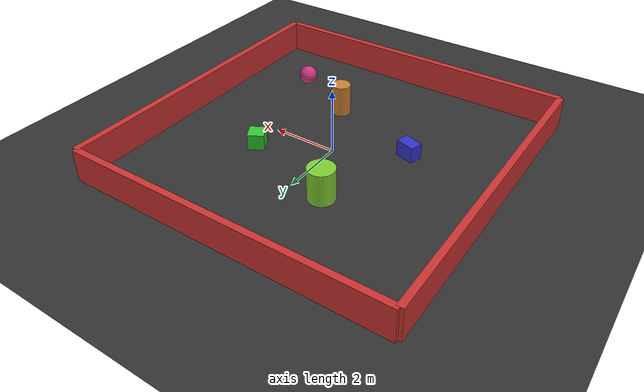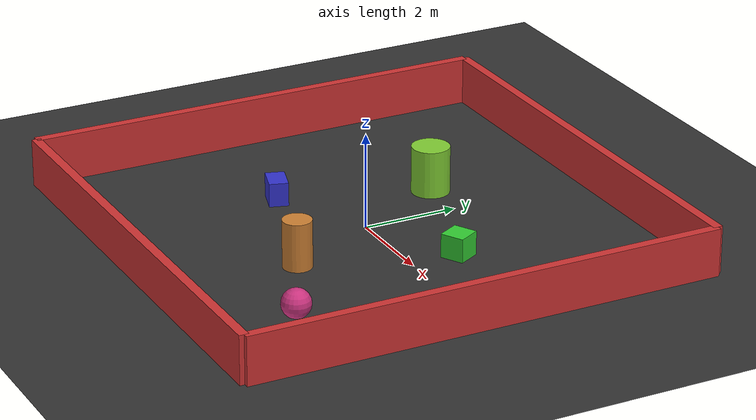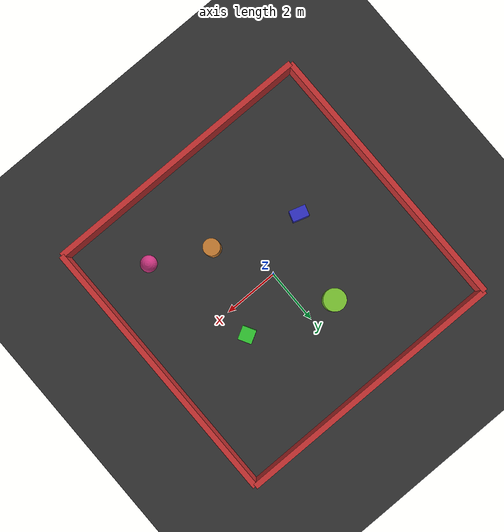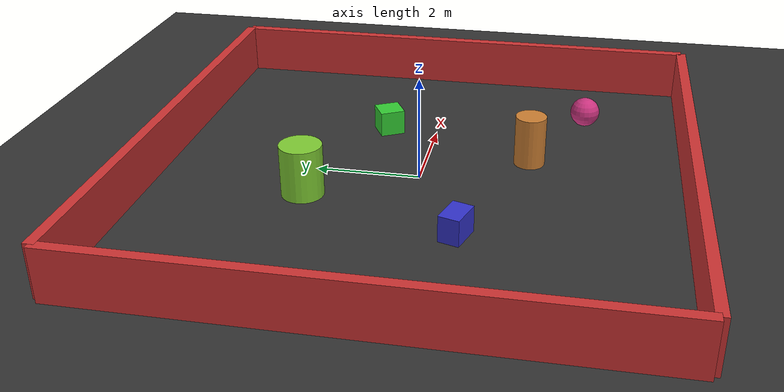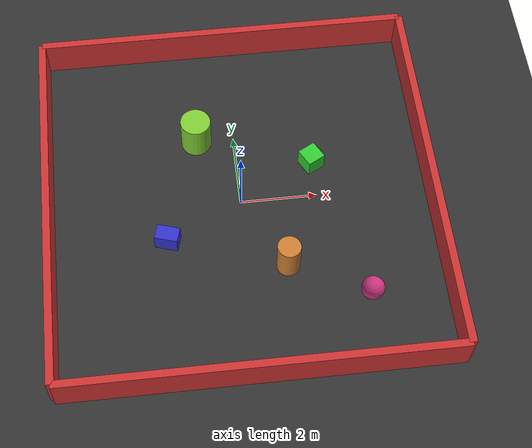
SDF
<?xml version="1.0" ?>
<sdf version="1.8">
  <world name="livox_world">
    <physics name="physics" type="ode">
      <max_step_size>0.001</max_step_size>
      <real_time_factor>1.0</real_time_factor>
      <real_time_update_rate>1000</real_time_update_rate>
      <ode>
        <solver>
          <type>quick</type>
          <iters>50</iters>
          <sor>1.0</sor>
        </solver>
        <constraints>
          <cfm>0.0</cfm>
          <erp>0.2</erp>
          <contact_max_correcting_vel>100.0</contact_max_correcting_vel>
          <contact_surface_layer>0.001</contact_surface_layer>
        </constraints>
      </ode>
    </physics>

    <scene>
      <ambient>0.5 0.5 0.5 1</ambient>
      <background>0.8 0.8 0.8 1</background>
      <shadows>true</shadows>
      <grid>true</grid>
    </scene>

    <light type="directional" name="sun">
      <cast_shadows>true</cast_shadows>
      <pose>0 0 10 0 0 0</pose>
      <diffuse>0.8 0.8 0.8 1</diffuse>
      <specular>0.2 0.2 0.2 1</specular>
      <attenuation>
        <range>1000</range>
        <constant>0.9</constant>
        <linear>0.01</linear>
        <quadratic>0.001</quadratic>
      </attenuation>
      <direction>-0.5 0.1 -0.9</direction>
    </light>

    <model name="ground_plane">
      <static>true</static>
      <link name="link">
        <collision name="collision">
          <geometry>
            <plane>
              <normal>0 0 1</normal>
              <size>100 100</size>
            </plane>
          </geometry>
          <surface>
            <friction>
              <ode>
                <mu>1.0</mu>
                <mu2>1.0</mu2>
              </ode>
            </friction>
            <contact>
              <ode>
                <kp>1e7</kp>
                <kd>1</kd>
              </ode>
            </contact>
          </surface>
        </collision>
        <visual name="visual">
          <geometry>
            <plane>
              <normal>0 0 1</normal>
              <size>100 100</size>
            </plane>
          </geometry>
          <material>
            <ambient>0.2 0.2 0.2 1</ambient>
            <diffuse>0.2 0.2 0.2 1</diffuse>
            <specular>0 0 0 1</specular>
          </material>
        </visual>
      </link>
    </model>

    <model name="wall_1">
      <static>true</static>
      <pose>5 0 0.5 0 0 0</pose>
      <link name="link">
        <collision name="collision">
          <geometry>
            <box>
              <size>0.2 10 1</size>
            </box>
          </geometry>
        </collision>
        <visual name="visual">
          <geometry>
            <box>
              <size>0.2 10 1</size>
            </box>
          </geometry>
          <material>
            <ambient>0.8 0.2 0.2 1</ambient>
            <diffuse>0.8 0.2 0.2 1</diffuse>
          </material>
        </visual>
      </link>
    </model>

    <model name="wall_2">
      <static>true</static>
      <pose>-5 0 0.5 0 0 0</pose>
      <link name="link">
        <collision name="collision">
          <geometry>
            <box>
              <size>0.2 10 1</size>
            </box>
          </geometry>
        </collision>
        <visual name="visual">
          <geometry>
            <box>
              <size>0.2 10 1</size>
            </box>
          </geometry>
          <material>
            <ambient>0.8 0.2 0.2 1</ambient>
            <diffuse>0.8 0.2 0.2 1</diffuse>
          </material>
        </visual>
      </link>
    </model>

    <model name="wall_3">
      <static>true</static>
      <pose>0 5 0.5 0 0 0</pose>
      <link name="link">
        <collision name="collision">
          <geometry>
            <box>
              <size>10 0.2 1</size>
            </box>
          </geometry>
        </collision>
        <visual name="visual">
          <geometry>
            <box>
              <size>10 0.2 1</size>
            </box>
          </geometry>
          <material>
            <ambient>0.8 0.2 0.2 1</ambient>
            <diffuse>0.8 0.2 0.2 1</diffuse>
          </material>
        </visual>
      </link>
    </model>

    <model name="wall_4">
      <static>true</static>
      <pose>0 -5 0.5 0 0 0</pose>
      <link name="link">
        <collision name="collision">
          <geometry>
            <box>
              <size>10 0.2 1</size>
            </box>
          </geometry>
        </collision>
        <visual name="visual">
          <geometry>
            <box>
              <size>10 0.2 1</size>
            </box>
          </geometry>
          <material>
            <ambient>0.8 0.2 0.2 1</ambient>
            <diffuse>0.8 0.2 0.2 1</diffuse>
          </material>
        </visual>
      </link>
    </model>

    <model name="obstacle_box_1">
      <static>true</static>
      <pose>2 1 0.25 0 0 0.5</pose>
      <link name="link">
        <collision name="collision">
          <geometry>
            <box>
              <size>0.5 0.5 0.5</size>
            </box>
          </geometry>
        </collision>
        <visual name="visual">
          <geometry>
            <box>
              <size>0.5 0.5 0.5</size>
            </box>
          </geometry>
          <material>
            <ambient>0.2 0.8 0.2 1</ambient>
            <diffuse>0.2 0.8 0.2 1</diffuse>
          </material>
        </visual>
      </link>
    </model>

    <model name="obstacle_box_2">
      <static>true</static>
      <pose>-2 -1 0.25 0 0 -0.3</pose>
      <link name="link">
        <collision name="collision">
          <geometry>
            <box>
              <size>0.6 0.4 0.5</size>
            </box>
          </geometry>
        </collision>
        <visual name="visual">
          <geometry>
            <box>
              <size>0.6 0.4 0.5</size>
            </box>
          </geometry>
          <material>
            <ambient>0.2 0.2 0.8 1</ambient>
            <diffuse>0.2 0.2 0.8 1</diffuse>
          </material>
        </visual>
      </link>
    </model>

    <model name="obstacle_cylinder_1">
      <static>true</static>
      <pose>1 -2 0.5 0 0 0</pose>
      <link name="link">
        <collision name="collision">
          <geometry>
            <cylinder>
              <radius>0.3</radius>
              <length>1</length>
            </cylinder>
          </geometry>
        </collision>
        <visual name="visual">
          <geometry>
            <cylinder>
              <radius>0.3</radius>
              <length>1</length>
            </cylinder>
          </geometry>
          <material>
            <ambient>0.8 0.5 0.2 1</ambient>
            <diffuse>0.8 0.5 0.2 1</diffuse>
          </material>
        </visual>
      </link>
    </model>

    <model name="obstacle_cylinder_2">
      <static>true</static>
      <pose>-1 2 0.5 0 0 0</pose>
      <link name="link">
        <collision name="collision">
          <geometry>
            <cylinder>
              <radius>0.4</radius>
              <length>1</length>
            </cylinder>
          </geometry>
        </collision>
        <visual name="visual">
          <geometry>
            <cylinder>
              <radius>0.4</radius>
              <length>1</length>
            </cylinder>
          </geometry>
          <material>
            <ambient>0.5 0.8 0.2 1</ambient>
            <diffuse>0.5 0.8 0.2 1</diffuse>
          </material>
        </visual>
      </link>
    </model>

    <model name="obstacle_sphere">
      <static>true</static>
      <pose>3 -3 0.3 0 0 0</pose>
      <link name="link">
        <collision name="collision">
          <geometry>
            <sphere>
              <radius>0.3</radius>
            </sphere>
          </geometry>
        </collision>
        <visual name="visual">
          <geometry>
            <sphere>
              <radius>0.3</radius>
            </sphere>
          </geometry>
          <material>
            <ambient>0.8 0.2 0.5 1</ambient>
            <diffuse>0.8 0.2 0.5 1</diffuse>
          </material>
        </visual>
      </link>
    </model>

  </world>
</sdf>
